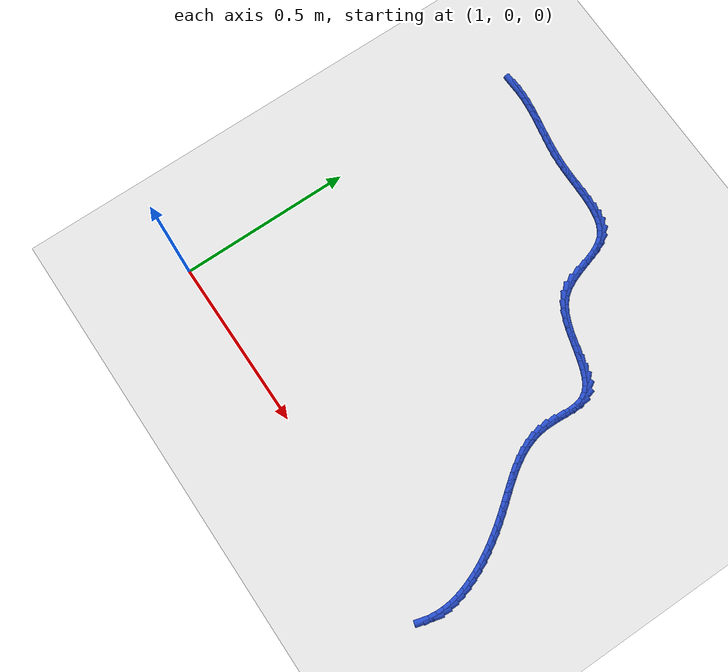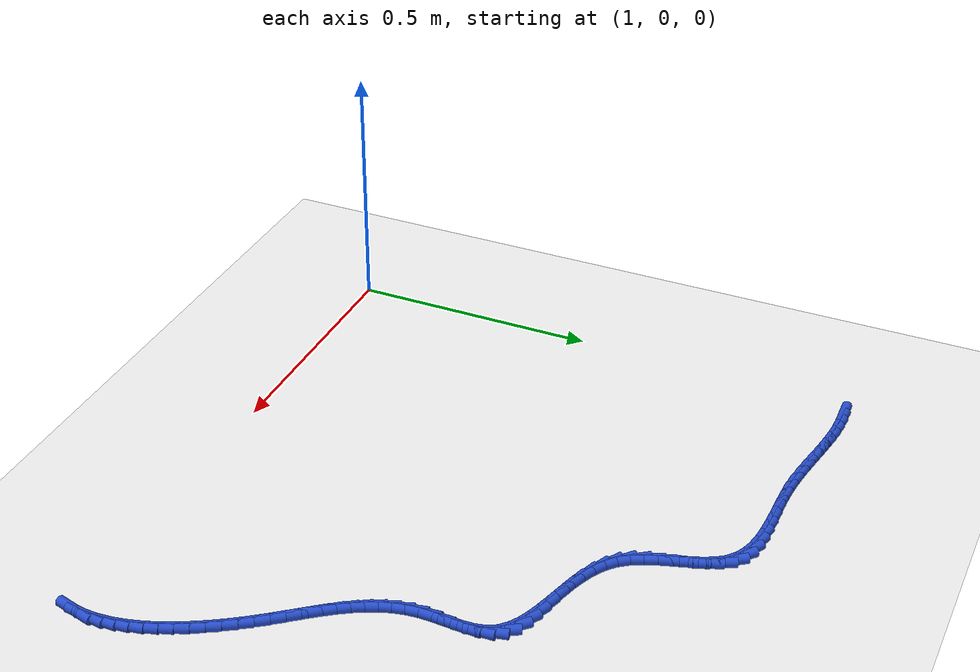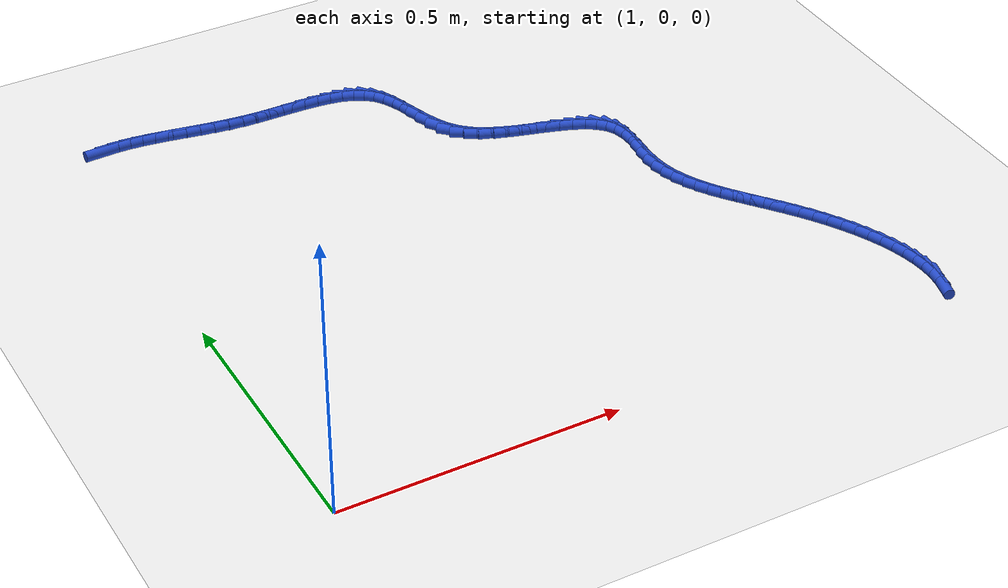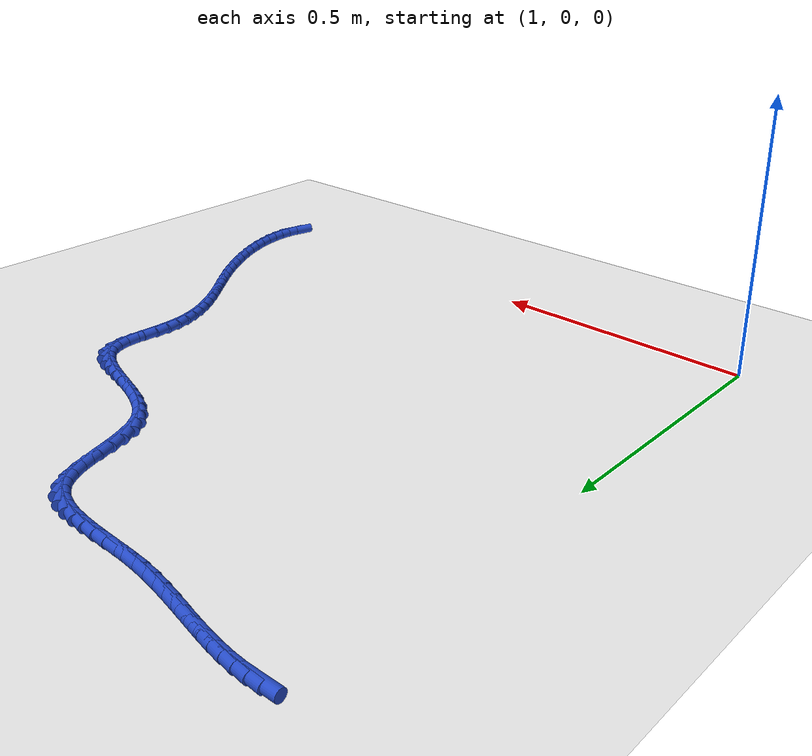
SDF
<sdf version="1.6">
 <world name="default">
  <model name="ground_plane">
   <static>1</static>
   <link name="link">
    <collision name="collision">
     <geometry><plane><normal>0 0 1</normal><size>100 100</size></plane></geometry>
     <surface><friction><ode><mu>100</mu><mu2>50</mu2></ode></friction></surface>
    </collision>
    <visual name="visual">
     <cast_shadows>0</cast_shadows>
     <geometry><plane><normal>0 0 1</normal><size>100 100</size></plane></geometry>
     <material>
      <script><uri>file://media/materials/scripts/gazebo.material</uri><name>Gazebo/WhiteGlow</name></script>
     </material>
    </visual>
   </link>
  </model>
  <model name="line">
   <link name="link_69">
    <pose>1.053619018122045 1.066965623289 0.01 0 1.57 0.03622314952101029</pose>
    <collision name="collision">
     <geometry><cylinder><radius>0.01</radius><length>0.08</length></cylinder></geometry>
    </collision>
    <visual name="visual">
     <material>
      <script><name>Gazebo/Blue</name><uri>file://media/materials/scripts/gazebo.material</uri></script>
     </material>
     <geometry><cylinder><radius>0.01</radius><length>0.08</length></cylinder></geometry>
    </visual>
   </link>
   <link name="link_70">
    <pose>1.0765532663972324 1.0677967375314794 0.01 0 1.57 -0.030619816489129974</pose>
    <collision name="collision">
     <geometry><cylinder><radius>0.01</radius><length>0.08</length></cylinder></geometry>
    </collision>
    <visual name="visual">
     <material>
      <script><name>Gazebo/Blue</name><uri>file://media/materials/scripts/gazebo.material</uri></script>
     </material>
     <geometry><cylinder><radius>0.01</radius><length>0.08</length></cylinder></geometry>
    </visual>
   </link>
   <link name="link_71">
    <pose>1.0995989053894601 1.0670908636780791 0.01 0 1.57 -0.08484776397649875</pose>
    <collision name="collision">
     <geometry><cylinder><radius>0.01</radius><length>0.08</length></cylinder></geometry>
    </collision>
    <visual name="visual">
     <material>
      <script><name>Gazebo/Blue</name><uri>file://media/materials/scripts/gazebo.material</uri></script>
     </material>
     <geometry><cylinder><radius>0.01</radius><length>0.08</length></cylinder></geometry>
    </visual>
   </link>
   <link name="link_72">
    <pose>1.1228153142877038 1.0651162625410544 0.01 0 1.57 -0.1262127067082713</pose>
    <collision name="collision">
     <geometry><cylinder><radius>0.01</radius><length>0.08</length></cylinder></geometry>
    </collision>
    <visual name="visual">
     <material>
      <script><name>Gazebo/Blue</name><uri>file://media/materials/scripts/gazebo.material</uri></script>
     </material>
     <geometry><cylinder><radius>0.01</radius><length>0.08</length></cylinder></geometry>
    </visual>
   </link>
   <link name="link_73">
    <pose>1.1462618722809406 1.0621411949326593 0.01 0 1.57 -0.154935454982123</pose>
    <collision name="collision">
     <geometry><cylinder><radius>0.01</radius><length>0.08</length></cylinder></geometry>
    </collision>
    <visual name="visual">
     <material>
      <script><name>Gazebo/Blue</name><uri>file://media/materials/scripts/gazebo.material</uri></script>
     </material>
     <geometry><cylinder><radius>0.01</radius><length>0.08</length></cylinder></geometry>
    </visual>
   </link>
   <link name="link_74">
    <pose>1.1699979585581455 1.0584339216651493 0.01 0 1.57 -0.17148641508600737</pose>
    <collision name="collision">
     <geometry><cylinder><radius>0.01</radius><length>0.08</length></cylinder></geometry>
    </collision>
    <visual name="visual">
     <material>
      <script><name>Gazebo/Blue</name><uri>file://media/materials/scripts/gazebo.material</uri></script>
     </material>
     <geometry><cylinder><radius>0.01</radius><length>0.08</length></cylinder></geometry>
    </visual>
   </link>
   <link name="link_75">
    <pose>1.1940829523082948 1.0542627035507788 0.01 0 1.57 -0.1764359204703832</pose>
    <collision name="collision">
     <geometry><cylinder><radius>0.01</radius><length>0.08</length></cylinder></geometry>
    </collision>
    <visual name="visual">
     <material>
      <script><name>Gazebo/Blue</name><uri>file://media/materials/scripts/gazebo.material</uri></script>
     </material>
     <geometry><cylinder><radius>0.01</radius><length>0.08</length></cylinder></geometry>
    </visual>
   </link>
   <link name="link_76">
    <pose>1.218576232720365 1.049895801401803 0.01 0 1.57 -0.17037390539857214</pose>
    <collision name="collision">
     <geometry><cylinder><radius>0.01</radius><length>0.08</length></cylinder></geometry>
    </collision>
    <visual name="visual">
     <material>
      <script><name>Gazebo/Blue</name><uri>file://media/materials/scripts/gazebo.material</uri></script>
     </material>
     <geometry><cylinder><radius>0.01</radius><length>0.08</length></cylinder></geometry>
    </visual>
   </link>
   <link name="link_77">
    <pose>1.243537178983332 1.0456014760304766 0.01 0 1.57 -0.15388545889799665</pose>
    <collision name="collision">
     <geometry><cylinder><radius>0.01</radius><length>0.08</length></cylinder></geometry>
    </collision>
    <visual name="visual">
     <material>
      <script><name>Gazebo/Blue</name><uri>file://media/materials/scripts/gazebo.material</uri></script>
     </material>
     <geometry><cylinder><radius>0.01</radius><length>0.08</length></cylinder></geometry>
    </visual>
   </link>
   <link name="link_78">
    <pose>1.2690251702861717 1.0416479882490544 0.01 0 1.57 -0.12756674353990904</pose>
    <collision name="collision">
     <geometry><cylinder><radius>0.01</radius><length>0.08</length></cylinder></geometry>
    </collision>
    <visual name="visual">
     <material>
      <script><name>Gazebo/Blue</name><uri>file://media/materials/scripts/gazebo.material</uri></script>
     </material>
     <geometry><cylinder><radius>0.01</radius><length>0.08</length></cylinder></geometry>
    </visual>
   </link>
   <link name="link_79">
    <pose>1.2950995858178596 1.0383035988697913 0.01 0 1.57 -0.09206719979062053</pose>
    <collision name="collision">
     <geometry><cylinder><radius>0.01</radius><length>0.08</length></cylinder></geometry>
    </collision>
    <visual name="visual">
     <material>
      <script><name>Gazebo/Blue</name><uri>file://media/materials/scripts/gazebo.material</uri></script>
     </material>
     <geometry><cylinder><radius>0.01</radius><length>0.08</length></cylinder></geometry>
    </visual>
   </link>
   <link name="link_80">
    <pose>1.3218198047673724 1.035836568704942 0.01 0 1.57 -0.04974213451940109</pose>
    <collision name="collision">
     <geometry><cylinder><radius>0.01</radius><length>0.08</length></cylinder></geometry>
    </collision>
    <visual name="visual">
     <material>
      <script><name>Gazebo/Blue</name><uri>file://media/materials/scripts/gazebo.material</uri></script>
     </material>
     <geometry><cylinder><radius>0.01</radius><length>0.08</length></cylinder></geometry>
    </visual>
   </link>
   <link name="link_81">
    <pose>1.3492198322307303 1.0344725076444299 0.01 0 1.57 -0.018469068860595347</pose>
    <collision name="collision">
     <geometry><cylinder><radius>0.01</radius><length>0.08</length></cylinder></geometry>
    </collision>
    <visual name="visual">
     <material>
      <script><name>Gazebo/Blue</name><uri>file://media/materials/scripts/gazebo.material</uri></script>
     </material>
     <geometry><cylinder><radius>0.01</radius><length>0.08</length></cylinder></geometry>
    </visual>
   </link>
   <link name="link_82">
    <pose>1.3770489692691115 1.033958470947721 0.01 0 1.57 -0.007822648997415962</pose>
    <collision name="collision">
     <geometry><cylinder><radius>0.01</radius><length>0.08</length></cylinder></geometry>
    </collision>
    <visual name="visual">
     <material>
      <script><name>Gazebo/Blue</name><uri>file://media/materials/scripts/gazebo.material</uri></script>
     </material>
     <geometry><cylinder><radius>0.01</radius><length>0.08</length></cylinder></geometry>
    </visual>
   </link>
   <link name="link_83">
    <pose>1.4048775986732998 1.033740772907202 0.01 0 1.57 -0.01750859711706074</pose>
    <collision name="collision">
     <geometry><cylinder><radius>0.01</radius><length>0.08</length></cylinder></geometry>
    </collision>
    <visual name="visual">
     <material>
      <script><name>Gazebo/Blue</name><uri>file://media/materials/scripts/gazebo.material</uri></script>
     </material>
     <geometry><cylinder><radius>0.01</radius><length>0.08</length></cylinder></geometry>
    </visual>
   </link>
   <link name="link_84">
    <pose>1.4322733280784166 1.033261063098815 0.01 0 1.57 -0.048963870254825806</pose>
    <collision name="collision">
     <geometry><cylinder><radius>0.01</radius><length>0.08</length></cylinder></geometry>
    </collision>
    <visual name="visual">
     <material>
      <script><name>Gazebo/Blue</name><uri>file://media/materials/scripts/gazebo.material</uri></script>
     </material>
     <geometry><cylinder><radius>0.01</radius><length>0.08</length></cylinder></geometry>
    </visual>
   </link>
   <link name="link_85">
    <pose>1.458803765119583 1.031960991098504 0.01 0 1.57 -0.10576683330669377</pose>
    <collision name="collision">
     <geometry><cylinder><radius>0.01</radius><length>0.08</length></cylinder></geometry>
    </collision>
    <visual name="visual">
     <material>
      <script><name>Gazebo/Blue</name><uri>file://media/materials/scripts/gazebo.material</uri></script>
     </material>
     <geometry><cylinder><radius>0.01</radius><length>0.08</length></cylinder></geometry>
    </visual>
   </link>
   <link name="link_86">
    <pose>1.484036517431921 1.0292822064822111 0.01 0 1.57 -0.1939284515912199</pose>
    <collision name="collision">
     <geometry><cylinder><radius>0.01</radius><length>0.08</length></cylinder></geometry>
    </collision>
    <visual name="visual">
     <material>
      <script><name>Gazebo/Blue</name><uri>file://media/materials/scripts/gazebo.material</uri></script>
     </material>
     <geometry><cylinder><radius>0.01</radius><length>0.08</length></cylinder></geometry>
    </visual>
   </link>
   <link name="link_87">
    <pose>1.507539192650552 1.0246663588258802 0.01 0 1.57 -0.3216602657821546</pose>
    <collision name="collision">
     <geometry><cylinder><radius>0.01</radius><length>0.08</length></cylinder></geometry>
    </collision>
    <visual name="visual">
     <material>
      <script><name>Gazebo/Blue</name><uri>file://media/materials/scripts/gazebo.material</uri></script>
     </material>
     <geometry><cylinder><radius>0.01</radius><length>0.08</length></cylinder></geometry>
    </visual>
   </link>
   <link name="link_88">
    <pose>1.5288793984105962 1.0175550977054535 0.01 0 1.57 -0.49688858393466956</pose>
    <collision name="collision">
     <geometry><cylinder><radius>0.01</radius><length>0.08</length></cylinder></geometry>
    </collision>
    <visual name="visual">
     <material>
      <script><name>Gazebo/Blue</name><uri>file://media/materials/scripts/gazebo.material</uri></script>
     </material>
     <geometry><cylinder><radius>0.01</radius><length>0.08</length></cylinder></geometry>
    </visual>
   </link>
   <link name="link_89">
    <pose>1.547624742347176 1.007390072696875 0.01 0 1.57 -0.719687332677338</pose>
    <collision name="collision">
     <geometry><cylinder><radius>0.01</radius><length>0.08</length></cylinder></geometry>
    </collision>
    <visual name="visual">
     <material>
      <script><name>Gazebo/Blue</name><uri>file://media/materials/scripts/gazebo.material</uri></script>
     </material>
     <geometry><cylinder><radius>0.01</radius><length>0.08</length></cylinder></geometry>
    </visual>
   </link>
   <link name="link_90">
    <pose>1.5633428320954124 0.9936129333760868 0.01 0 1.57 -0.95726159282721</pose>
    <collision name="collision">
     <geometry><cylinder><radius>0.01</radius><length>0.08</length></cylinder></geometry>
    </collision>
    <visual name="visual">
     <material>
      <script><name>Gazebo/Blue</name><uri>file://media/materials/scripts/gazebo.material</uri></script>
     </material>
     <geometry><cylinder><radius>0.01</radius><length>0.08</length></cylinder></geometry>
    </visual>
   </link>
   <link name="link_91">
    <pose>1.575814356183967 0.9759025636627119 0.01 0 1.57 -1.1282033467137547</pose>
    <collision name="collision">
     <geometry><cylinder><radius>0.01</radius><length>0.08</length></cylinder></geometry>
    </collision>
    <visual name="visual">
     <material>
      <script><name>Gazebo/Blue</name><uri>file://media/materials/scripts/gazebo.material</uri></script>
     </material>
     <geometry><cylinder><radius>0.01</radius><length>0.08</length></cylinder></geometry>
    </visual>
   </link>
   <link name="link_92">
    <pose>1.5857394230924953 0.9549614868323809 0.01 0 1.57 -1.2261156756591074</pose>
    <collision name="collision">
     <geometry><cylinder><radius>0.01</radius><length>0.08</length></cylinder></geometry>
    </collision>
    <visual name="visual">
     <material>
      <script><name>Gazebo/Blue</name><uri>file://media/materials/scripts/gazebo.material</uri></script>
     </material>
     <geometry><cylinder><radius>0.01</radius><length>0.08</length></cylinder></geometry>
    </visual>
   </link>
   <link name="link_93">
    <pose>1.594066070136612 0.93176825858062 0.01 0 1.57 -1.266780386683887</pose>
    <collision name="collision">
     <geometry><cylinder><radius>0.01</radius><length>0.08</length></cylinder></geometry>
    </collision>
    <visual name="visual">
     <material>
      <script><name>Gazebo/Blue</name><uri>file://media/materials/scripts/gazebo.material</uri></script>
     </material>
     <geometry><cylinder><radius>0.01</radius><length>0.08</length></cylinder></geometry>
    </visual>
   </link>
   <link name="link_94">
    <pose>1.601742338335549 0.9073014387263917 0.01 0 1.57 -1.2592577414366717</pose>
    <collision name="collision">
     <geometry><cylinder><radius>0.01</radius><length>0.08</length></cylinder></geometry>
    </collision>
    <visual name="visual">
     <material>
      <script><name>Gazebo/Blue</name><uri>file://media/materials/scripts/gazebo.material</uri></script>
     </material>
     <geometry><cylinder><radius>0.01</radius><length>0.08</length></cylinder></geometry>
    </visual>
   </link>
   <link name="link_95">
    <pose>1.6097162687085362 0.882539587088657 0.01 0 1.57 -1.2051161069939043</pose>
    <collision name="collision">
     <geometry><cylinder><radius>0.01</radius><length>0.08</length></cylinder></geometry>
    </collision>
    <visual name="visual">
     <material>
      <script><name>Gazebo/Blue</name><uri>file://media/materials/scripts/gazebo.material</uri></script>
     </material>
     <geometry><cylinder><radius>0.01</radius><length>0.08</length></cylinder></geometry>
    </visual>
   </link>
   <link name="link_96">
    <pose>1.6189359022748062 0.8584612634863795 0.01 0 1.57 -1.0998501788672579</pose>
    <collision name="collision">
     <geometry><cylinder><radius>0.01</radius><length>0.08</length></cylinder></geometry>
    </collision>
    <visual name="visual">
     <material>
      <script><name>Gazebo/Blue</name><uri>file://media/materials/scripts/gazebo.material</uri></script>
     </material>
     <geometry><cylinder><radius>0.01</radius><length>0.08</length></cylinder></geometry>
    </visual>
   </link>
   <link name="link_97">
    <pose>1.6303492800535904 0.8360450277385213 0.01 0 1.57 -0.9363047618754069</pose>
    <collision name="collision">
     <geometry><cylinder><radius>0.01</radius><length>0.08</length></cylinder></geometry>
    </collision>
    <visual name="visual">
     <material>
      <script><name>Gazebo/Blue</name><uri>file://media/materials/scripts/gazebo.material</uri></script>
     </material>
     <geometry><cylinder><radius>0.01</radius><length>0.08</length></cylinder></geometry>
    </visual>
   </link>
   <link name="link_98">
    <pose>1.64490444306412 0.8162694396640441 0.01 0 1.57 -0.7299418730663588</pose>
    <collision name="collision">
     <geometry><cylinder><radius>0.01</radius><length>0.08</length></cylinder></geometry>
    </collision>
    <visual name="visual">
     <material>
      <script><name>Gazebo/Blue</name><uri>file://media/materials/scripts/gazebo.material</uri></script>
     </material>
     <geometry><cylinder><radius>0.01</radius><length>0.08</length></cylinder></geometry>
    </visual>
   </link>
   <link name="link_99">
    <pose>1.6632572309725948 0.7998471291145888 0.01 0 1.57 -0.5554232370245059</pose>
    <collision name="collision">
     <geometry><cylinder><radius>0.01</radius><length>0.08</length></cylinder></geometry>
    </collision>
    <visual name="visual">
     <material>
      <script><name>Gazebo/Blue</name><uri>file://media/materials/scripts/gazebo.material</uri></script>
     </material>
     <geometry><cylinder><radius>0.01</radius><length>0.08</length></cylinder></geometry>
    </visual>
   </link>
   <link name="link_100">
    <pose>1.684889514631584 0.7864223069046961 0.01 0 1.57 -0.42997131240741004</pose>
    <collision name="collision">
     <geometry><cylinder><radius>0.01</radius><length>0.08</length></cylinder></geometry>
    </collision>
    <visual name="visual">
     <material>
      <script><name>Gazebo/Blue</name><uri>file://media/materials/scripts/gazebo.material</uri></script>
     </material>
     <geometry><cylinder><radius>0.01</radius><length>0.08</length></cylinder></geometry>
    </visual>
   </link>
   <link name="link_101">
    <pose>1.7089883761424407 0.7753708991124939 0.01 0 1.57 -0.34662630922019183</pose>
    <collision name="collision">
     <geometry><cylinder><radius>0.01</radius><length>0.08</length></cylinder></geometry>
    </collision>
    <visual name="visual">
     <material>
      <script><name>Gazebo/Blue</name><uri>file://media/materials/scripts/gazebo.material</uri></script>
     </material>
     <geometry><cylinder><radius>0.01</radius><length>0.08</length></cylinder></geometry>
    </visual>
   </link>
   <link name="link_102">
    <pose>1.734740897605587 0.7660688318152631 0.01 0 1.57 -0.29830167797642293</pose>
    <collision name="collision">
     <geometry><cylinder><radius>0.01</radius><length>0.08</length></cylinder></geometry>
    </collision>
    <visual name="visual">
     <material>
      <script><name>Gazebo/Blue</name><uri>file://media/materials/scripts/gazebo.material</uri></script>
     </material>
     <geometry><cylinder><radius>0.01</radius><length>0.08</length></cylinder></geometry>
    </visual>
   </link>
   <link name="link_103">
    <pose>1.761334161121445 0.7578920310902847 0.01 0 1.57 -0.2807145477959708</pose>
    <collision name="collision">
     <geometry><cylinder><radius>0.01</radius><length>0.08</length></cylinder></geometry>
    </collision>
    <visual name="visual">
     <material>
      <script><name>Gazebo/Blue</name><uri>file://media/materials/scripts/gazebo.material</uri></script>
     </material>
     <geometry><cylinder><radius>0.01</radius><length>0.08</length></cylinder></geometry>
    </visual>
   </link>
   <link name="link_104">
    <pose>1.7879552487904387 0.7502164230148393 0.01 0 1.57 -0.2931494372839936</pose>
    <collision name="collision">
     <geometry><cylinder><radius>0.01</radius><length>0.08</length></cylinder></geometry>
    </collision>
    <visual name="visual">
     <material>
      <script><name>Gazebo/Blue</name><uri>file://media/materials/scripts/gazebo.material</uri></script>
     </material>
     <geometry><cylinder><radius>0.01</radius><length>0.08</length></cylinder></geometry>
    </visual>
   </link>
   <link name="link_105">
    <pose>1.8137912427129887 0.742417933666208 0.01 0 1.57 -0.3389573452144705</pose>
    <collision name="collision">
     <geometry><cylinder><radius>0.01</radius><length>0.08</length></cylinder></geometry>
    </collision>
    <visual name="visual">
     <material>
      <script><name>Gazebo/Blue</name><uri>file://media/materials/scripts/gazebo.material</uri></script>
     </material>
     <geometry><cylinder><radius>0.01</radius><length>0.08</length></cylinder></geometry>
    </visual>
   </link>
   <link name="link_106">
    <pose>1.8380292249895185 0.7338724891216716 0.01 0 1.57 -0.4264408962996968</pose>
    <collision name="collision">
     <geometry><cylinder><radius>0.01</radius><length>0.08</length></cylinder></geometry>
    </collision>
    <visual name="visual">
     <material>
      <script><name>Gazebo/Blue</name><uri>file://media/materials/scripts/gazebo.material</uri></script>
     </material>
     <geometry><cylinder><radius>0.01</radius><length>0.08</length></cylinder></geometry>
    </visual>
   </link>
   <link name="link_107">
    <pose>1.8598562777204497 0.7239560154585108 0.01 0 1.57 -0.5695238672275885</pose>
    <collision name="collision">
     <geometry><cylinder><radius>0.01</radius><length>0.08</length></cylinder></geometry>
    </collision>
    <visual name="visual">
     <material>
      <script><name>Gazebo/Blue</name><uri>file://media/materials/scripts/gazebo.material</uri></script>
     </material>
     <geometry><cylinder><radius>0.01</radius><length>0.08</length></cylinder></geometry>
    </visual>
   </link>
   <link name="link_108">
    <pose>1.8784594830062051 0.7120444387540064 0.01 0 1.57 -0.7841717133479317</pose>
    <collision name="collision">
     <geometry><cylinder><radius>0.01</radius><length>0.08</length></cylinder></geometry>
    </collision>
    <visual name="visual">
     <material>
      <script><name>Gazebo/Blue</name><uri>file://media/materials/scripts/gazebo.material</uri></script>
     </material>
     <geometry><cylinder><radius>0.01</radius><length>0.08</length></cylinder></geometry>
    </visual>
   </link>
   <link name="link_109">
    <pose>1.8930259229472082 0.6975136850854394 0.01 0 1.57 -1.0704428930671748</pose>
    <collision name="collision">
     <geometry><cylinder><radius>0.01</radius><length>0.08</length></cylinder></geometry>
    </collision>
    <visual name="visual">
     <material>
      <script><name>Gazebo/Blue</name><uri>file://media/materials/scripts/gazebo.material</uri></script>
     </material>
     <geometry><cylinder><radius>0.01</radius><length>0.08</length></cylinder></geometry>
    </visual>
   </link>
   <link name="link_110">
    <pose>1.902743697472154 0.6797403512917511 0.01 0 1.57 -1.3551087334132366</pose>
    <collision name="collision">
     <geometry><cylinder><radius>0.01</radius><length>0.08</length></cylinder></geometry>
    </collision>
    <visual name="visual">
     <material>
      <script><name>Gazebo/Blue</name><uri>file://media/materials/scripts/gazebo.material</uri></script>
     </material>
     <geometry><cylinder><radius>0.01</radius><length>0.08</length></cylinder></geometry>
    </visual>
   </link>
   <link name="link_111">
    <pose>1.9073984949879423 0.658494852550108 0.01 0 1.57 -1.529791005781952</pose>
    <collision name="collision">
     <geometry><cylinder><radius>0.01</radius><length>0.08</length></cylinder></geometry>
    </collision>
    <visual name="visual">
     <material>
      <script><name>Gazebo/Blue</name><uri>file://media/materials/scripts/gazebo.material</uri></script>
     </material>
     <geometry><cylinder><radius>0.01</radius><length>0.08</length></cylinder></geometry>
    </visual>
   </link>
   <link name="link_112">
    <pose>1.9083787045527743 0.634603803964874 0.01 0 1.57 1.5300858627346956</pose>
    <collision name="collision">
     <geometry><cylinder><radius>0.01</radius><length>0.08</length></cylinder></geometry>
    </collision>
    <visual name="visual">
     <material>
      <script><name>Gazebo/Blue</name><uri>file://media/materials/scripts/gazebo.material</uri></script>
     </material>
     <geometry><cylinder><radius>0.01</radius><length>0.08</length></cylinder></geometry>
    </visual>
   </link>
   <link name="link_113">
    <pose>1.9073385978197381 0.6090690406212201 0.01 0 1.57 1.5171301182100543</pose>
    <collision name="collision">
     <geometry><cylinder><radius>0.01</radius><length>0.08</length></cylinder></geometry>
    </collision>
    <visual name="visual">
     <material>
      <script><name>Gazebo/Blue</name><uri>file://media/materials/scripts/gazebo.material</uri></script>
     </material>
     <geometry><cylinder><radius>0.01</radius><length>0.08</length></cylinder></geometry>
    </visual>
   </link>
   <link name="link_114">
    <pose>1.9059324464419212 0.5828923976043181 0.01 0 1.57 1.5662286010206374</pose>
    <collision name="collision">
     <geometry><cylinder><radius>0.01</radius><length>0.08</length></cylinder></geometry>
    </collision>
    <visual name="visual">
     <material>
      <script><name>Gazebo/Blue</name><uri>file://media/materials/scripts/gazebo.material</uri></script>
     </material>
     <geometry><cylinder><radius>0.01</radius><length>0.08</length></cylinder></geometry>
    </visual>
   </link>
   <link name="link_115">
    <pose>1.9058145220724114 0.5570757099993393 0.01 0 1.57 -1.4688335395610101</pose>
    <collision name="collision">
     <geometry><cylinder><radius>0.01</radius><length>0.08</length></cylinder></geometry>
    </collision>
    <visual name="visual">
     <material>
      <script><name>Gazebo/Blue</name><uri>file://media/materials/scripts/gazebo.material</uri></script>
     </material>
     <geometry><cylinder><radius>0.01</radius><length>0.08</length></cylinder></geometry>
    </visual>
   </link>
   <link name="link_116">
    <pose>1.9083355761871246 0.532436216668787 0.01 0 1.57 -1.3520292408109194</pose>
    <collision name="collision">
     <geometry><cylinder><radius>0.01</radius><length>0.08</length></cylinder></geometry>
    </collision>
    <visual name="visual">
     <material>
      <script><name>Gazebo/Blue</name><uri>file://media/materials/scripts/gazebo.material</uri></script>
     </material>
     <geometry><cylinder><radius>0.01</radius><length>0.08</length></cylinder></geometry>
    </visual>
   </link>
   <link name="link_117">
    <pose>1.9135459751718051 0.5090002826100519 0.01 0 1.57 -1.2438623786610812</pose>
    <collision name="collision">
     <geometry><cylinder><radius>0.01</radius><length>0.08</length></cylinder></geometry>
    </collision>
    <visual name="visual">
     <material>
      <script><name>Gazebo/Blue</name><uri>file://media/materials/scripts/gazebo.material</uri></script>
     </material>
     <geometry><cylinder><radius>0.01</radius><length>0.08</length></cylinder></geometry>
    </visual>
   </link>
   <link name="link_118">
    <pose>1.921147901070204 0.48658251255166096 0.01 0 1.57 -1.1486214772858092</pose>
    <collision name="collision">
     <geometry><cylinder><radius>0.01</radius><length>0.08</length></cylinder></geometry>
    </collision>
    <visual name="visual">
     <material>
      <script><name>Gazebo/Blue</name><uri>file://media/materials/scripts/gazebo.material</uri></script>
     </material>
     <geometry><cylinder><radius>0.01</radius><length>0.08</length></cylinder></geometry>
    </visual>
   </link>
   <link name="link_119">
    <pose>1.930843532027078 0.464997508850832 0.01 0 1.57 -1.0688403821546482</pose>
    <collision name="collision">
     <geometry><cylinder><radius>0.01</radius><length>0.08</length></cylinder></geometry>
    </collision>
    <visual name="visual">
     <material>
      <script><name>Gazebo/Blue</name><uri>file://media/materials/scripts/gazebo.material</uri></script>
     </material>
     <geometry><cylinder><radius>0.01</radius><length>0.08</length></cylinder></geometry>
    </visual>
   </link>
   <link name="link_120">
    <pose>1.9423350461871833 0.4440598738647837 0.01 0 1.57 -1.0054724655976808</pose>
    <collision name="collision">
     <geometry><cylinder><radius>0.01</radius><length>0.08</length></cylinder></geometry>
    </collision>
    <visual name="visual">
     <material>
      <script><name>Gazebo/Blue</name><uri>file://media/materials/scripts/gazebo.material</uri></script>
     </material>
     <geometry><cylinder><radius>0.01</radius><length>0.08</length></cylinder></geometry>
    </visual>
   </link>
   <link name="link_121">
    <pose>1.9553246216952775 0.4235842099507345 0.01 0 1.57 -0.9583960069152935</pose>
    <collision name="collision">
     <geometry><cylinder><radius>0.01</radius><length>0.08</length></cylinder></geometry>
    </collision>
    <visual name="visual">
     <material>
      <script><name>Gazebo/Blue</name><uri>file://media/materials/scripts/gazebo.material</uri></script>
     </material>
     <geometry><cylinder><radius>0.01</radius><length>0.08</length></cylinder></geometry>
    </visual>
   </link>
   <link name="link_122">
    <pose>1.9695144366961186 0.4033851194659027 0.01 0 1.57 -0.926935763328734</pose>
    <collision name="collision">
     <geometry><cylinder><radius>0.01</radius><length>0.08</length></cylinder></geometry>
    </collision>
    <visual name="visual">
     <material>
      <script><name>Gazebo/Blue</name><uri>file://media/materials/scripts/gazebo.material</uri></script>
     </material>
     <geometry><cylinder><radius>0.01</radius><length>0.08</length></cylinder></geometry>
    </visual>
   </link>
   <link name="link_123">
    <pose>1.9846066693344613 0.38327720476750743 0.01 0 1.57 -0.9102451070299009</pose>
    <collision name="collision">
     <geometry><cylinder><radius>0.01</radius><length>0.08</length></cylinder></geometry>
    </collision>
    <visual name="visual">
     <material>
      <script><name>Gazebo/Blue</name><uri>file://media/materials/scripts/gazebo.material</uri></script>
     </material>
     <geometry><cylinder><radius>0.01</radius><length>0.08</length></cylinder></geometry>
    </visual>
   </link>
   <link name="link_124">
    <pose>2.000303497755063 0.3630750682127667 0.01 0 1.57 -0.9075257136679853</pose>
    <collision name="collision">
     <geometry><cylinder><radius>0.01</radius><length>0.08</length></cylinder></geometry>
    </collision>
    <visual name="visual">
     <material>
      <script><name>Gazebo/Blue</name><uri>file://media/materials/scripts/gazebo.material</uri></script>
     </material>
     <geometry><cylinder><radius>0.01</radius><length>0.08</length></cylinder></geometry>
    </visual>
   </link>
   <link name="link_125">
    <pose>2.0163071001026807 0.34259331215889915 0.01 0 1.57 -0.9181173962062262</pose>
    <collision name="collision">
     <geometry><cylinder><radius>0.01</radius><length>0.08</length></cylinder></geometry>
    </collision>
    <visual name="visual">
     <material>
      <script><name>Gazebo/Blue</name><uri>file://media/materials/scripts/gazebo.material</uri></script>
     </material>
     <geometry><cylinder><radius>0.01</radius><length>0.08</length></cylinder></geometry>
    </visual>
   </link>
   <link name="link_126">
    <pose>2.032319654522072 0.321646538963123 0.01 0 1.57 -0.9414071404820207</pose>
    <collision name="collision">
     <geometry><cylinder><radius>0.01</radius><length>0.08</length></cylinder></geometry>
    </collision>
    <visual name="visual">
     <material>
      <script><name>Gazebo/Blue</name><uri>file://media/materials/scripts/gazebo.material</uri></script>
     </material>
     <geometry><cylinder><radius>0.01</radius><length>0.08</length></cylinder></geometry>
    </visual>
   </link>
   <link name="link_127">
    <pose>2.0480443318061305 0.30005203550621345 0.01 0 1.57 -0.9730703675578707</pose>
    <collision name="collision">
     <geometry><cylinder><radius>0.01</radius><length>0.08</length></cylinder></geometry>
    </collision>
    <visual name="visual">
     <material>
      <script><name>Gazebo/Blue</name><uri>file://media/materials/scripts/gazebo.material</uri></script>
     </material>
     <geometry><cylinder><radius>0.01</radius><length>0.08</length></cylinder></geometry>
    </visual>
   </link>
   <link name="link_128">
    <pose>2.0632290074243294 0.2777479882633747 0.01 0 1.57 -1.0079111974521004</pose>
    <collision name="collision">
     <geometry><cylinder><radius>0.01</radius><length>0.08</length></cylinder></geometry>
    </collision>
    <visual name="visual">
     <material>
      <script><name>Gazebo/Blue</name><uri>file://media/materials/scripts/gazebo.material</uri></script>
     </material>
     <geometry><cylinder><radius>0.01</radius><length>0.08</length></cylinder></geometry>
    </visual>
   </link>
   <link name="link_129">
    <pose>2.077683438383834 0.2548399365100752 0.01 0 1.57 -1.0461780621144652</pose>
    <collision name="collision">
     <geometry><cylinder><radius>0.01</radius><length>0.08</length></cylinder></geometry>
    </collision>
    <visual name="visual">
     <material>
      <script><name>Gazebo/Blue</name><uri>file://media/materials/scripts/gazebo.material</uri></script>
     </material>
     <geometry><cylinder><radius>0.01</radius><length>0.08</length></cylinder></geometry>
    </visual>
   </link>
   <link name="link_130">
    <pose>2.091221923966857 0.2314457036775508 0.01 0 1.57 -1.0886209672529912</pose>
    <collision name="collision">
     <geometry><cylinder><radius>0.01</radius><length>0.08</length></cylinder></geometry>
    </collision>
    <visual name="visual">
     <material>
      <script><name>Gazebo/Blue</name><uri>file://media/materials/scripts/gazebo.material</uri></script>
     </material>
     <geometry><cylinder><radius>0.01</radius><length>0.08</length></cylinder></geometry>
    </visual>
   </link>
   <link name="link_131">
    <pose>2.1036587634556065 0.20768311319703678 0.01 0 1.57 -1.1361075460265955</pose>
    <collision name="collision">
     <geometry><cylinder><radius>0.01</radius><length>0.08</length></cylinder></geometry>
    </collision>
    <visual name="visual">
     <material>
      <script><name>Gazebo/Blue</name><uri>file://media/materials/scripts/gazebo.material</uri></script>
     </material>
     <geometry><cylinder><radius>0.01</radius><length>0.08</length></cylinder></geometry>
    </visual>
   </link>
   <link name="link_132">
    <pose>2.114808256132293 0.18366998849976968 0.01 0 1.57 -1.1896435089390667</pose>
    <collision name="collision">
     <geometry><cylinder><radius>0.01</radius><length>0.08</length></cylinder></geometry>
    </collision>
    <visual name="visual">
     <material>
      <script><name>Gazebo/Blue</name><uri>file://media/materials/scripts/gazebo.material</uri></script>
     </material>
     <geometry><cylinder><radius>0.01</radius><length>0.08</length></cylinder></geometry>
    </visual>
   </link>
   <link name="link_133">
    <pose>2.124484701279129 0.15952415301698503 0.01 0 1.57 -1.2503828190478987</pose>
    <collision name="collision">
     <geometry><cylinder><radius>0.01</radius><length>0.08</length></cylinder></geometry>
    </collision>
    <visual name="visual">
     <material>
      <script><name>Gazebo/Blue</name><uri>file://media/materials/scripts/gazebo.material</uri></script>
     </material>
     <geometry><cylinder><radius>0.01</radius><length>0.08</length></cylinder></geometry>
    </visual>
   </link>
   <link name="link_134">
    <pose>2.1325023981783238 0.1353634301799186 0.01 0 1.57 -1.319614835863994</pose>
    <collision name="collision">
     <geometry><cylinder><radius>0.01</radius><length>0.08</length></cylinder></geometry>
    </collision>
    <visual name="visual">
     <material>
      <script><name>Gazebo/Blue</name><uri>file://media/materials/scripts/gazebo.material</uri></script>
     </material>
     <geometry><cylinder><radius>0.01</radius><length>0.08</length></cylinder></geometry>
    </visual>
   </link>
   <link name="link_135">
    <pose>2.1386756461120875 0.11130564341980557 0.01 0 1.57 -1.3987061617539596</pose>
    <collision name="collision">
     <geometry><cylinder><radius>0.01</radius><length>0.08</length></cylinder></geometry>
    </collision>
    <visual name="visual">
     <material>
      <script><name>Gazebo/Blue</name><uri>file://media/materials/scripts/gazebo.material</uri></script>
     </material>
     <geometry><cylinder><radius>0.01</radius><length>0.08</length></cylinder></geometry>
    </visual>
   </link>
   <link name="link_136">
    <pose>2.1428187443626303 0.08746861616788267 0.01 0 1.57 -1.488963508715697</pose>
    <collision name="collision">
     <geometry><cylinder><radius>0.01</radius><length>0.08</length></cylinder></geometry>
    </collision>
    <visual name="visual">
     <material>
      <script><name>Gazebo/Blue</name><uri>file://media/materials/scripts/gazebo.material</uri></script>
     </material>
     <geometry><cylinder><radius>0.01</radius><length>0.08</length></cylinder></geometry>
    </visual>
   </link>
   <link name="link_137">
    <pose>2.1447459922121643 0.06397017185538523 0.01 0 1.57 1.5502149746503548</pose>
    <collision name="collision">
     <geometry><cylinder><radius>0.01</radius><length>0.08</length></cylinder></geometry>
    </collision>
    <visual name="visual">
     <material>
      <script><name>Gazebo/Blue</name><uri>file://media/materials/scripts/gazebo.material</uri></script>
     </material>
     <geometry><cylinder><radius>0.01</radius><length>0.08</length></cylinder></geometry>
    </visual>
   </link>
   <link name="link_138">
    <pose>2.1442716889428985 0.04092813391354911 0.01 0 1.57 1.4353663573839481</pose>
    <collision name="collision">
     <geometry><cylinder><radius>0.01</radius><length>0.08</length></cylinder></geometry>
    </collision>
    <visual name="visual">
     <material>
      <script><name>Gazebo/Blue</name><uri>file://media/materials/scripts/gazebo.material</uri></script>
     </material>
     <geometry><cylinder><radius>0.01</radius><length>0.08</length></cylinder></geometry>
    </visual>
   </link>
   <link name="link_139">
    <pose>2.1412101338370437 0.01846032577361001 0.01 0 1.57 1.3090704153672126</pose>
    <collision name="collision">
     <geometry><cylinder><radius>0.01</radius><length>0.08</length></cylinder></geometry>
    </collision>
    <visual name="visual">
     <material>
      <script><name>Gazebo/Blue</name><uri>file://media/materials/scripts/gazebo.material</uri></script>
     </material>
     <geometry><cylinder><radius>0.01</radius><length>0.08</length></cylinder></geometry>
    </visual>
   </link>
  </model>
 </world>
</sdf>
